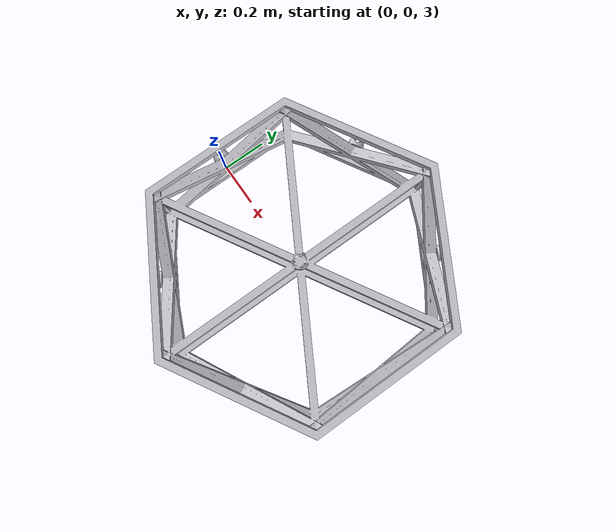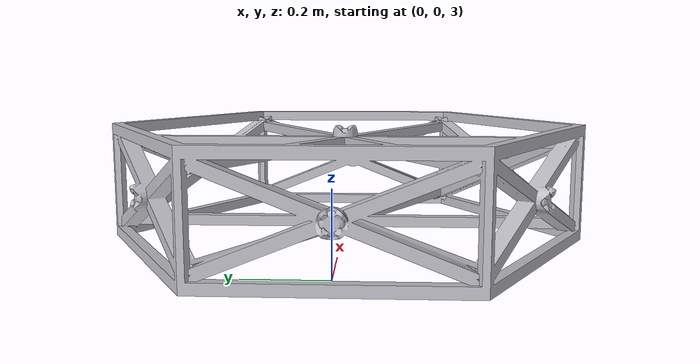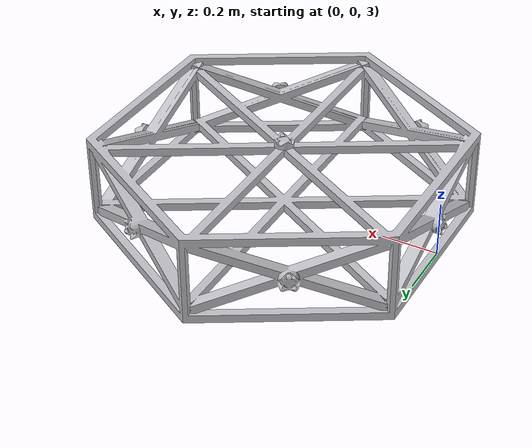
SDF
<?xml version="1.0" ?>
<sdf version="1.4">
  <model name="srs_module">
    <static>0</static>
    <link name="base_link">
      <inertial>
        <mass>0.01</mass>
        <inertia>
          <ixx>0.01</ixx>
          <ixy>0.0</ixy>
          <ixz>0.0</ixz>
          <iyy>0.01</iyy>
          <iyz>0.0</iyz>
          <izz>0.01</izz>
        </inertia>
      </inertial>

      <collision name="collision">
        <pose>0.585 0 3.276589 0 0 0</pose>
        <geometry>
          <mesh>
            <scale>0.001 0.001 0.001</scale>

            <!-- Add your PC Username here -->
            <uri>/home/peraspera/mario_ws/src/srs_modules_description/meshes/base_link.stl</uri>

          </mesh>
        </geometry>
      </collision>

      <visual name="visual">
        <pose>0.585 0 3.276589 0 0 0</pose>
        <geometry>
          <mesh>
            <scale>0.001 0.001 0.001</scale>

            <!-- Add your PC Username here -->
            <uri>/home/peraspera/mario_ws/src/srs_modules_description/meshes/base_link.stl</uri>

          </mesh>
        </geometry>

        <material>
          <script>
            <name>Gazebo/Silver</name>
            <uri>file://media/materials/scripts/gazebo.material</uri>
          </script>
        </material>
      </visual>

    </link>
  </model>
</sdf>
